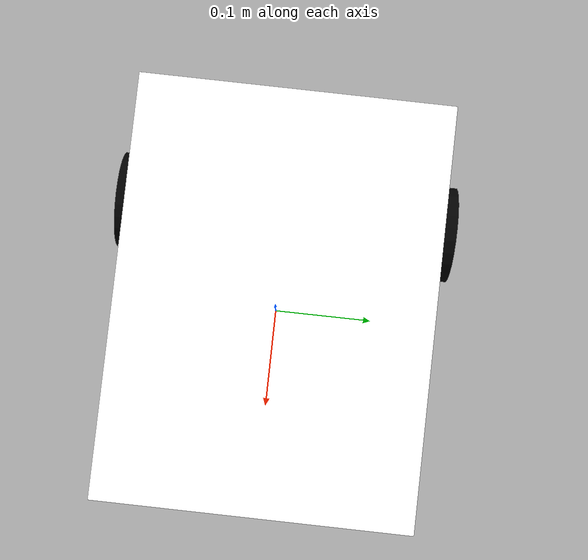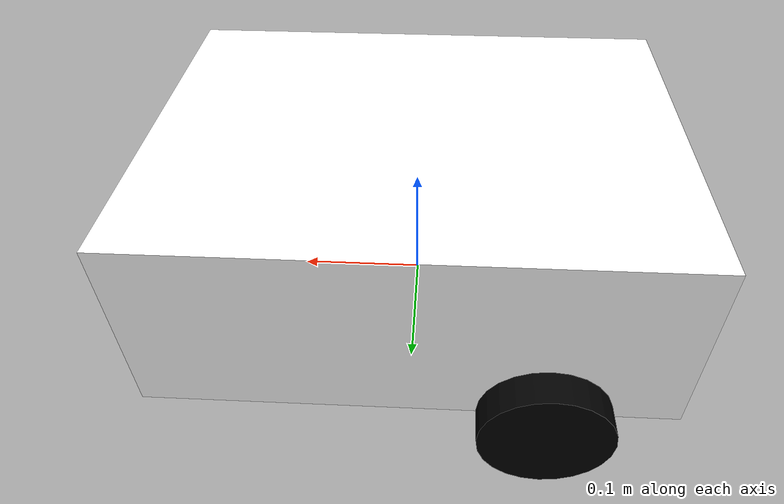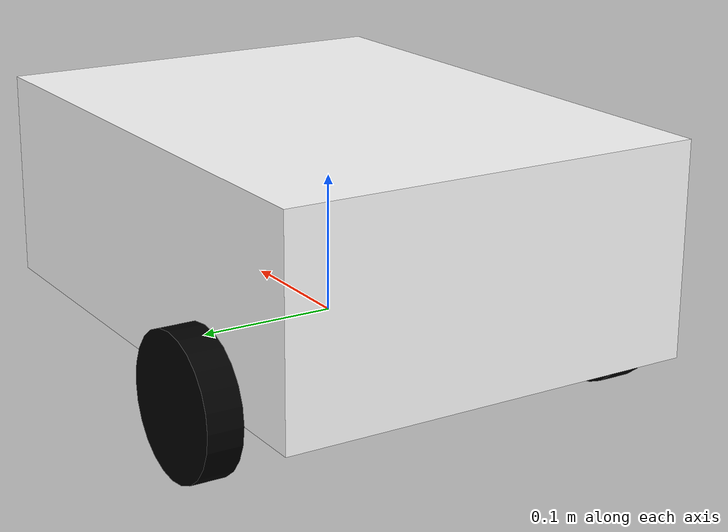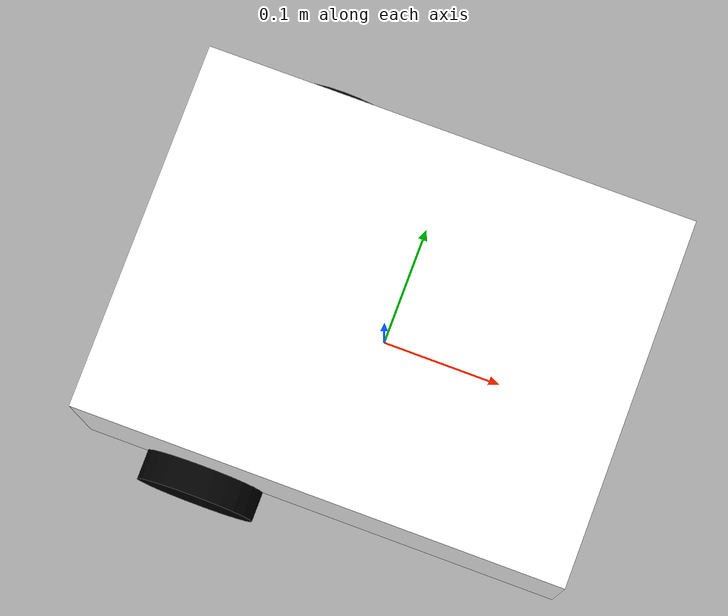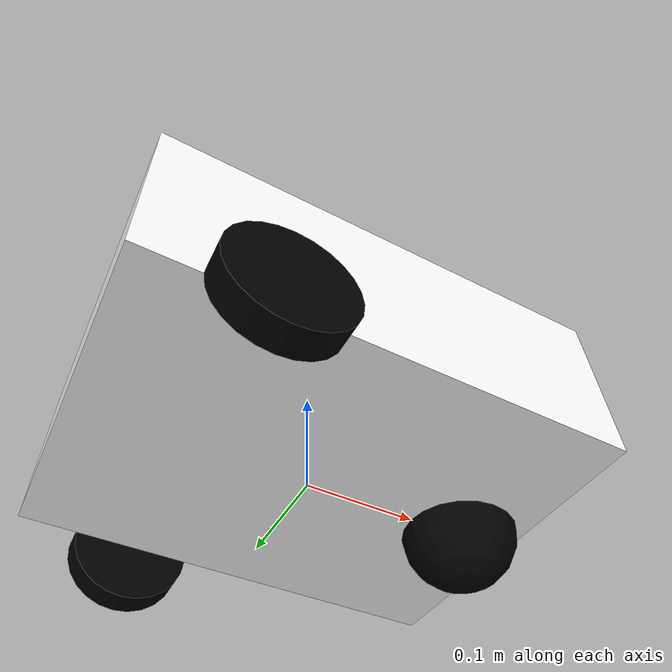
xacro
<?xml version="1.0"?>
<robot xmlns:xacro="https://www.ros.org/wiki/xacro">

    <xacro:include filename="inertial_macros.xacro"/>

    <material name="White">
        <color rgba="1 1 1 1"/>
    </material>

    <material name="Black">
        <color rgba="0 0 0 1"/>
    </material>

    <!-- base link -->

    <link name="base_link">

    </link>

    <!-- base footprint -->

    <joint name="base_footprint_joint" type="fixed">
        <parent link="base_link"/>
        <child link="base_footprint"/>
        <origin xyz="0 0 0" rpy="0 0 0"/>
    </joint>

    <link name="base_footprint">

    </link>

    <!-- chassis -->

    <joint name="chassis_joint" type="fixed">
        <parent link="base_link"/>
        <child link="chassis_link"/>
        <origin xyz="-0.2 0 0"/> <!-- chassis_link at the back of the box --> <!-- origin is described w.r.t. the parent link -->
    </joint>

    <link name="chassis_link">
        <visual>
            <origin xyz="0.2 0 0.075"/> <!--shift the box foward by half its length and up by half its length for the origin of chasssis_link to be in the back of the base_link -->
            <geometry>
                <box size="0.4 0.3 0.15"/>  <!-- the model spawns around the chassis_link as its center -->
            </geometry>
            <material name="White"/>
        </visual>
        <collision>
            <origin xyz="0.2 0 0.075"/>
            <geometry>
                <box size="0.4 0.3 0.15"/>
            </geometry>
        </collision>
        <xacro:inertial_box mass="0.6" x="0.4" y="0.3" z="0.15">
            <origin xyz="0.2 0 0.075" rpy="0 0 0"/>
        </xacro:inertial_box>
    </link>

    <gazebo reference="chassis_link">
        <material>Gazebo/White</material>
    </gazebo>

    <!-- wheels -->

    <!-- left rear wheel -->
    <joint name="left_rear_joint" type="continuous">
        <parent link="base_link"/>
        <child link="left_rear_link"/>
        <origin xyz="-0.1 0.1625 0" rpy="-${pi/2} 0 0"/> <!-- cylinders ae oriented along z axis by default so we need to rotate them 90 degrees counterclockwise in the x axis -->
        <axis xyz="0 0 1"/>                             <!-- axis of rotation-->
    </joint>

    <link name="left_rear_link">
        <visual>
            <origin xyz="0 0 0"/>
            <geometry>
                <cylinder radius="0.05" length="0.025"/>
            </geometry>
            <material name="Black"/>
        </visual>
        <collision>
            <origin xyz="0 0 0"/>
            <geometry>
                <cylinder radius="0.05" length="0.025"/>
            </geometry>
        </collision>
        <xacro:inertial_cylinder mass="0.1" length="0.025" radius="0.05">
            <origin xyz="0 0 0" rpy="0 0 0"/>
        </xacro:inertial_cylinder>
    </link>

    <gazebo reference="left_rear_link">
        <material>Gazebo/Black</material>
    </gazebo>

    <!-- right rear wheel -->
    <joint name="right_rear_joint" type="continuous">
        <parent link="base_link"/>
        <child link="right_rear_link"/>
        <origin xyz="-0.1 -0.1625 0" rpy="${pi/2} 0 0"/>
        <axis xyz="0 0 -1"/>
    </joint>

    <link name="right_rear_link">
        <visual>
            <origin xyz="0 0 0"/>
            <geometry>
                <cylinder radius="0.05" length="0.025"/>
            </geometry>
            <material name="Black"/>
        </visual>
        <collision>
            <origin xyz="0 0 0"/>
            <geometry>
                <cylinder radius="0.05" length="0.025"/>
            </geometry>
        </collision>
        <xacro:inertial_cylinder mass="0.1" length="0.025" radius="0.05">
            <origin xyz="0 0 0" rpy="0 0 0"/>
        </xacro:inertial_cylinder>
    </link>

    <gazebo reference="right_rear_link">
        <material>Gazebo/Black</material>
    </gazebo>

    <!-- caster wheel -->
    <joint name="caster_wheel_joint" type="fixed">
        <parent link="base_link"/>
        <child link="caster_link"/>
        <origin xyz="0.15 0 0" rpy="0 0 0"/>
    </joint>

    <link name="caster_link">
        <visual>
            <origin xyz="0 0 0"/>
            <geometry>
                <sphere radius="0.05"/>
            </geometry>
            <material name="Black"/>
        </visual>
        <collision>
            <origin xyz="0 0 0"/>
            <geometry>
                <sphere radius="0.05"/>
            </geometry>
        </collision>
        <xacro:inertial_sphere mass="0.1" radius="0.05">
            <origin xyz="0 0 0" rpy="0 0 0"/>
        </xacro:inertial_sphere>
    </link>

    <gazebo reference="caster_link">
        <material>Gazebo/Black</material>
        <mu1 value="0.001"/>
        <mu2 value="0.001"/>
    </gazebo>

</robot>
